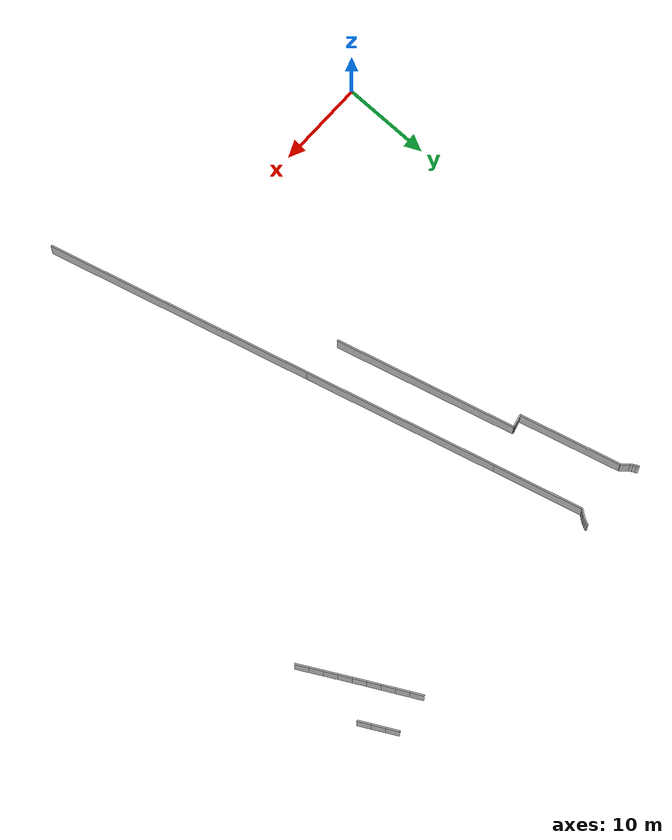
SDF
<?xml version="1.0" ?>
<sdf version="1.6">
  <model name="sps_0513">
    <pose frame="">0 0 0 0 -0 0</pose>
    <static>1</static>
    <self_collide>0</self_collide>
    <allow_auto_disable>0</allow_auto_disable>
    <link name="Wall172">
      <kinematic>0</kinematic>
      <gravity>1</gravity>
      <self_collide>0</self_collide>
      <collision name="collision">
        <geometry>
          <box>
            <size>21.6386 0.15 2.5</size>
          </box>
        </geometry>
        <pose frame="">0 0 0 0 -0 0</pose>
      </collision>
      <visual name="visual">
        <geometry>
          <box>
            <size>21.6386 0.15 2.5</size>
          </box>
        </geometry>
        <pose frame="">0 0 0 0 -0 0</pose>
        <cast_shadows>1</cast_shadows>
        <transparency>0.0</transparency>
      </visual>
      <pose frame="">23.9429 28.3484 1.25 0 0 -1.31066</pose>
    </link>
    <link name="Wall173">
      <kinematic>0</kinematic>
      <gravity>1</gravity>
      <self_collide>0</self_collide>
      <collision name="collision">
        <geometry>
          <box>
            <size>30.1057 0.15 2.5</size>
          </box>
        </geometry>
        <pose frame="">0 0 0 0 -0 0</pose>
      </collision>
      <visual name="visual">
        <geometry>
          <box>
            <size>30.1057 0.15 2.5</size>
          </box>
        </geometry>
        <pose frame="">0 0 0 0 -0 0</pose>
        <cast_shadows>1</cast_shadows>
        <transparency>0.0</transparency>
      </visual>
      <pose frame="">30.5976 3.34669 1.25 0 0 -1.31066</pose>
    </link>
    <link name="Wall509">
      <kinematic>0</kinematic>
      <gravity>1</gravity>
      <self_collide>0</self_collide>
      <collision name="collision">
        <geometry>
          <box>
            <size>20.4345 0.15 2.5</size>
          </box>
        </geometry>
        <pose frame="">0 0 0 0 -0 0</pose>
      </collision>
      <visual name="visual">
        <geometry>
          <box>
            <size>20.4345 0.15 2.5</size>
          </box>
        </geometry>
        <pose frame="">0 0 0 0 -0 0</pose>
        <cast_shadows>1</cast_shadows>
        <transparency>0.0</transparency>
      </visual>
      <pose frame="">19.4189 27.7658 1.25 0 -0 1.83122</pose>
    </link>
    <link name="Wall1851">
      <kinematic>0</kinematic>
      <gravity>1</gravity>
      <self_collide>0</self_collide>
      <collision name="collision">
        <geometry>
          <box>
            <size>0.359038 0.15 2.5</size>
          </box>
        </geometry>
        <pose frame="">0 0 0 0 -0 0</pose>
      </collision>
      <visual name="visual">
        <geometry>
          <box>
            <size>0.359038 0.15 2.5</size>
          </box>
        </geometry>
        <pose frame="">0 0 0 0 -0 0</pose>
        <cast_shadows>1</cast_shadows>
        <transparency>0.0</transparency>
      </visual>
      <pose frame="">19.4558 49.9186 1.25 0 0 -1.96292</pose>
    </link>
    <link name="Wall1852">
      <kinematic>0</kinematic>
      <gravity>1</gravity>
      <self_collide>0</self_collide>
      <collision name="collision">
        <geometry>
          <box>
            <size>0.359042 0.15 2.5</size>
          </box>
        </geometry>
        <pose frame="">0 0 0 0 -0 0</pose>
      </collision>
      <visual name="visual">
        <geometry>
          <box>
            <size>0.359042 0.15 2.5</size>
          </box>
        </geometry>
        <pose frame="">0 0 0 0 -0 0</pose>
        <cast_shadows>1</cast_shadows>
        <transparency>0.0</transparency>
      </visual>
      <pose frame="">19.3052 49.593 1.25 0 0 -2.04516</pose>
    </link>
    <link name="Wall1853">
      <kinematic>0</kinematic>
      <gravity>1</gravity>
      <self_collide>0</self_collide>
      <collision name="collision">
        <geometry>
          <box>
            <size>0.359012 0.15 2.5</size>
          </box>
        </geometry>
        <pose frame="">0 0 0 0 -0 0</pose>
      </collision>
      <visual name="visual">
        <geometry>
          <box>
            <size>0.359012 0.15 2.5</size>
          </box>
        </geometry>
        <pose frame="">0 0 0 0 -0 0</pose>
        <cast_shadows>1</cast_shadows>
        <transparency>0.0</transparency>
      </visual>
      <pose frame="">19.1285 49.2808 1.25 0 0 -2.12649</pose>
    </link>
    <link name="Wall1854">
      <kinematic>0</kinematic>
      <gravity>1</gravity>
      <self_collide>0</self_collide>
      <collision name="collision">
        <geometry>
          <box>
            <size>0.359002 0.15 2.5</size>
          </box>
        </geometry>
        <pose frame="">0 0 0 0 -0 0</pose>
      </collision>
      <visual name="visual">
        <geometry>
          <box>
            <size>0.359002 0.15 2.5</size>
          </box>
        </geometry>
        <pose frame="">0 0 0 0 -0 0</pose>
        <cast_shadows>1</cast_shadows>
        <transparency>0.0</transparency>
      </visual>
      <pose frame="">18.9269 48.9841 1.25 0 0 -2.20875</pose>
    </link>
    <link name="Wall1855">
      <kinematic>0</kinematic>
      <gravity>1</gravity>
      <self_collide>0</self_collide>
      <collision name="collision">
        <geometry>
          <box>
            <size>0.359012 0.15 2.5</size>
          </box>
        </geometry>
        <pose frame="">0 0 0 0 -0 0</pose>
      </collision>
      <visual name="visual">
        <geometry>
          <box>
            <size>0.359012 0.15 2.5</size>
          </box>
        </geometry>
        <pose frame="">0 0 0 0 -0 0</pose>
        <cast_shadows>1</cast_shadows>
        <transparency>0.0</transparency>
      </visual>
      <pose frame="">18.7018 48.7048 1.25 0 0 -2.28955</pose>
    </link>
    <link name="Wall1856">
      <kinematic>0</kinematic>
      <gravity>1</gravity>
      <self_collide>0</self_collide>
      <collision name="collision">
        <geometry>
          <box>
            <size>10.1002 0.15 2.5</size>
          </box>
        </geometry>
        <pose frame="">0 0 0 0 -0 0</pose>
      </collision>
      <visual name="visual">
        <geometry>
          <box>
            <size>10.1002 0.15 2.5</size>
          </box>
        </geometry>
        <pose frame="">0 0 0 0 -0 0</pose>
        <cast_shadows>1</cast_shadows>
        <transparency>0.0</transparency>
      </visual>
      <pose frame="">19.8718 43.6867 1.25 0 0 -1.31286</pose>
    </link>
    <link name="Wall1871">
      <kinematic>0</kinematic>
      <gravity>1</gravity>
      <self_collide>0</self_collide>
      <collision name="collision">
        <geometry>
          <box>
            <size>1.45081 0.15 2.5</size>
          </box>
        </geometry>
        <pose frame="">0 0 0 0 -0 0</pose>
      </collision>
      <visual name="visual">
        <geometry>
          <box>
            <size>1.45081 0.15 2.5</size>
          </box>
        </geometry>
        <pose frame="">0 0 0 0 -0 0</pose>
        <cast_shadows>1</cast_shadows>
        <transparency>0.0</transparency>
      </visual>
      <pose frame="">16.0871 37.4519 1.25 0 0 -2.88141</pose>
    </link>
    <link name="Wall1872">
      <kinematic>0</kinematic>
      <gravity>1</gravity>
      <self_collide>0</self_collide>
      <collision name="collision">
        <geometry>
          <box>
            <size>11.4693 0.15 2.5</size>
          </box>
        </geometry>
        <pose frame="">0 0 0 0 -0 0</pose>
      </collision>
      <visual name="visual">
        <geometry>
          <box>
            <size>11.4693 0.15 2.5</size>
          </box>
        </geometry>
        <pose frame="">0 0 0 0 -0 0</pose>
        <cast_shadows>1</cast_shadows>
        <transparency>0.0</transparency>
      </visual>
      <pose frame="">13.9096 42.8066 1.25 0 -0 1.8312</pose>
    </link>
    <link name="Wall1873">
      <kinematic>0</kinematic>
      <gravity>1</gravity>
      <self_collide>0</self_collide>
      <collision name="collision">
        <geometry>
          <box>
            <size>1.00383 0.15 2.5</size>
          </box>
        </geometry>
        <pose frame="">0 0 0 0 -0 0</pose>
      </collision>
      <visual name="visual">
        <geometry>
          <box>
            <size>1.00383 0.15 2.5</size>
          </box>
        </geometry>
        <pose frame="">0 0 0 0 -0 0</pose>
        <cast_shadows>1</cast_shadows>
        <transparency>0.0</transparency>
      </visual>
      <pose frame="">12.103 48.726 1.25 0 -0 2.28856</pose>
    </link>
    <link name="Wall1874">
      <kinematic>0</kinematic>
      <gravity>1</gravity>
      <self_collide>0</self_collide>
      <collision name="collision">
        <geometry>
          <box>
            <size>0.335332 0.15 2.5</size>
          </box>
        </geometry>
        <pose frame="">0 0 0 0 -0 0</pose>
      </collision>
      <visual name="visual">
        <geometry>
          <box>
            <size>0.335332 0.15 2.5</size>
          </box>
        </geometry>
        <pose frame="">0 0 0 0 -0 0</pose>
        <cast_shadows>1</cast_shadows>
        <transparency>0.0</transparency>
      </visual>
      <pose frame="">11.6831 49.2457 1.25 0 -0 2.13588</pose>
    </link>
    <link name="Wall1875">
      <kinematic>0</kinematic>
      <gravity>1</gravity>
      <self_collide>0</self_collide>
      <collision name="collision">
        <geometry>
          <box>
            <size>0.33527 0.15 2.5</size>
          </box>
        </geometry>
        <pose frame="">0 0 0 0 -0 0</pose>
      </collision>
      <visual name="visual">
        <geometry>
          <box>
            <size>0.33527 0.15 2.5</size>
          </box>
        </geometry>
        <pose frame="">0 0 0 0 -0 0</pose>
        <cast_shadows>1</cast_shadows>
        <transparency>0.0</transparency>
      </visual>
      <pose frame="">11.5146 49.5353 1.25 0 -0 2.05952</pose>
    </link>
    <link name="Wall1876">
      <kinematic>0</kinematic>
      <gravity>1</gravity>
      <self_collide>0</self_collide>
      <collision name="collision">
        <geometry>
          <box>
            <size>0.335136 0.15 2.5</size>
          </box>
        </geometry>
        <pose frame="">0 0 0 0 -0 0</pose>
      </collision>
      <visual name="visual">
        <geometry>
          <box>
            <size>0.335136 0.15 2.5</size>
          </box>
        </geometry>
        <pose frame="">0 0 0 0 -0 0</pose>
        <cast_shadows>1</cast_shadows>
        <transparency>0.0</transparency>
      </visual>
      <pose frame="">11.3687 49.8368 1.25 0 -0 1.98344</pose>
    </link>
    <link name="Wall8323">
      <kinematic>0</kinematic>
      <gravity>1</gravity>
      <self_collide>0</self_collide>
      <collision name="collision">
        <geometry>
          <box>
            <size>1.49892 0.15 2.5</size>
          </box>
        </geometry>
        <pose frame="">0 0 0 0 -0 0</pose>
      </collision>
      <visual name="visual">
        <geometry>
          <box>
            <size>1.49892 0.15 2.5</size>
          </box>
        </geometry>
        <pose frame="">0 0 0 0 -0 0</pose>
        <cast_shadows>1</cast_shadows>
        <transparency>0.0</transparency>
      </visual>
      <pose frame="">44.2035 48.8159 1.25 0 0 -1.08457</pose>
    </link>
    <link name="Wall8324">
      <kinematic>0</kinematic>
      <gravity>1</gravity>
      <self_collide>0</self_collide>
      <collision name="collision">
        <geometry>
          <box>
            <size>1.499 0.15 2.5</size>
          </box>
        </geometry>
        <pose frame="">0 0 0 0 -0 0</pose>
      </collision>
      <visual name="visual">
        <geometry>
          <box>
            <size>1.499 0.15 2.5</size>
          </box>
        </geometry>
        <pose frame="">0 0 0 0 -0 0</pose>
        <cast_shadows>1</cast_shadows>
        <transparency>0.0</transparency>
      </visual>
      <pose frame="">44.905 47.4912 1.25 0 0 -1.08298</pose>
    </link>
    <link name="Wall8325">
      <kinematic>0</kinematic>
      <gravity>1</gravity>
      <self_collide>0</self_collide>
      <collision name="collision">
        <geometry>
          <box>
            <size>1.49876 0.15 2.5</size>
          </box>
        </geometry>
        <pose frame="">0 0 0 0 -0 0</pose>
      </collision>
      <visual name="visual">
        <geometry>
          <box>
            <size>1.49876 0.15 2.5</size>
          </box>
        </geometry>
        <pose frame="">0 0 0 0 -0 0</pose>
        <cast_shadows>1</cast_shadows>
        <transparency>0.0</transparency>
      </visual>
      <pose frame="">45.6085 46.1677 1.25 0 0 -1.08138</pose>
    </link>
    <link name="Wall8326">
      <kinematic>0</kinematic>
      <gravity>1</gravity>
      <self_collide>0</self_collide>
      <collision name="collision">
        <geometry>
          <box>
            <size>1.49912 0.15 2.5</size>
          </box>
        </geometry>
        <pose frame="">0 0 0 0 -0 0</pose>
      </collision>
      <visual name="visual">
        <geometry>
          <box>
            <size>1.49912 0.15 2.5</size>
          </box>
        </geometry>
        <pose frame="">0 0 0 0 -0 0</pose>
        <cast_shadows>1</cast_shadows>
        <transparency>0.0</transparency>
      </visual>
      <pose frame="">46.3143 44.8453 1.25 0 0 -1.0798</pose>
    </link>
    <link name="Wall8327">
      <kinematic>0</kinematic>
      <gravity>1</gravity>
      <self_collide>0</self_collide>
      <collision name="collision">
        <geometry>
          <box>
            <size>1.49894 0.15 2.5</size>
          </box>
        </geometry>
        <pose frame="">0 0 0 0 -0 0</pose>
      </collision>
      <visual name="visual">
        <geometry>
          <box>
            <size>1.49894 0.15 2.5</size>
          </box>
        </geometry>
        <pose frame="">0 0 0 0 -0 0</pose>
        <cast_shadows>1</cast_shadows>
        <transparency>0.0</transparency>
      </visual>
      <pose frame="">47.0221 43.5239 1.25 0 0 -1.0783</pose>
    </link>
    <link name="Wall8328">
      <kinematic>0</kinematic>
      <gravity>1</gravity>
      <self_collide>0</self_collide>
      <collision name="collision">
        <geometry>
          <box>
            <size>1.49897 0.15 2.5</size>
          </box>
        </geometry>
        <pose frame="">0 0 0 0 -0 0</pose>
      </collision>
      <visual name="visual">
        <geometry>
          <box>
            <size>1.49897 0.15 2.5</size>
          </box>
        </geometry>
        <pose frame="">0 0 0 0 -0 0</pose>
        <cast_shadows>1</cast_shadows>
        <transparency>0.0</transparency>
      </visual>
      <pose frame="">47.732 42.2037 1.25 0 0 -1.07655</pose>
    </link>
    <link name="Wall8329">
      <kinematic>0</kinematic>
      <gravity>1</gravity>
      <self_collide>0</self_collide>
      <collision name="collision">
        <geometry>
          <box>
            <size>1.49863 0.15 2.5</size>
          </box>
        </geometry>
        <pose frame="">0 0 0 0 -0 0</pose>
      </collision>
      <visual name="visual">
        <geometry>
          <box>
            <size>1.49863 0.15 2.5</size>
          </box>
        </geometry>
        <pose frame="">0 0 0 0 -0 0</pose>
        <cast_shadows>1</cast_shadows>
        <transparency>0.0</transparency>
      </visual>
      <pose frame="">48.444 40.8848 1.25 0 0 -1.075</pose>
    </link>
    <link name="Wall8330">
      <kinematic>0</kinematic>
      <gravity>1</gravity>
      <self_collide>0</self_collide>
      <collision name="collision">
        <geometry>
          <box>
            <size>1.49897 0.15 2.5</size>
          </box>
        </geometry>
        <pose frame="">0 0 0 0 -0 0</pose>
      </collision>
      <visual name="visual">
        <geometry>
          <box>
            <size>1.49897 0.15 2.5</size>
          </box>
        </geometry>
        <pose frame="">0 0 0 0 -0 0</pose>
        <cast_shadows>1</cast_shadows>
        <transparency>0.0</transparency>
      </visual>
      <pose frame="">49.158 39.567 1.25 0 0 -1.07355</pose>
    </link>
    <link name="Wall8331">
      <kinematic>0</kinematic>
      <gravity>1</gravity>
      <self_collide>0</self_collide>
      <collision name="collision">
        <geometry>
          <box>
            <size>1.49887 0.15 2.5</size>
          </box>
        </geometry>
        <pose frame="">0 0 0 0 -0 0</pose>
      </collision>
      <visual name="visual">
        <geometry>
          <box>
            <size>1.49887 0.15 2.5</size>
          </box>
        </geometry>
        <pose frame="">0 0 0 0 -0 0</pose>
        <cast_shadows>1</cast_shadows>
        <transparency>0.0</transparency>
      </visual>
      <pose frame="">49.874 38.2502 1.25 0 0 -1.07189</pose>
    </link>
    <link name="Wall9405">
      <kinematic>0</kinematic>
      <gravity>1</gravity>
      <self_collide>0</self_collide>
      <collision name="collision">
        <geometry>
          <box>
            <size>1.49253 0.15 2.5</size>
          </box>
        </geometry>
        <pose frame="">0 0 0 0 -0 0</pose>
      </collision>
      <visual name="visual">
        <geometry>
          <box>
            <size>1.49253 0.15 2.5</size>
          </box>
        </geometry>
        <pose frame="">0 0 0 0 -0 0</pose>
        <cast_shadows>1</cast_shadows>
        <transparency>0.0</transparency>
      </visual>
      <pose frame="">48.562 49.4321 1.25 0 0 -1.08295</pose>
    </link>
    <link name="Wall9406">
      <kinematic>0</kinematic>
      <gravity>1</gravity>
      <self_collide>0</self_collide>
      <collision name="collision">
        <geometry>
          <box>
            <size>1.4924 0.15 2.5</size>
          </box>
        </geometry>
        <pose frame="">0 0 0 0 -0 0</pose>
      </collision>
      <visual name="visual">
        <geometry>
          <box>
            <size>1.4924 0.15 2.5</size>
          </box>
        </geometry>
        <pose frame="">0 0 0 0 -0 0</pose>
        <cast_shadows>1</cast_shadows>
        <transparency>0.0</transparency>
      </visual>
      <pose frame="">49.2626 48.1143 1.25 0 0 -1.08138</pose>
    </link>
    <link name="Wall9407">
      <kinematic>0</kinematic>
      <gravity>1</gravity>
      <self_collide>0</self_collide>
      <collision name="collision">
        <geometry>
          <box>
            <size>1.49232 0.15 2.5</size>
          </box>
        </geometry>
        <pose frame="">0 0 0 0 -0 0</pose>
      </collision>
      <visual name="visual">
        <geometry>
          <box>
            <size>1.49232 0.15 2.5</size>
          </box>
        </geometry>
        <pose frame="">0 0 0 0 -0 0</pose>
        <cast_shadows>1</cast_shadows>
        <transparency>0.0</transparency>
      </visual>
      <pose frame="">49.9652 46.7977 1.25 0 0 -1.07982</pose>
    </link>
  </model>
</sdf>
